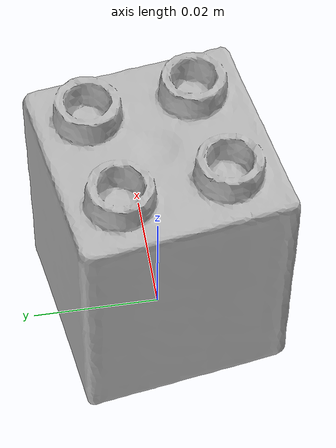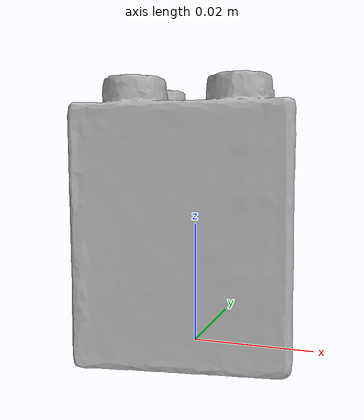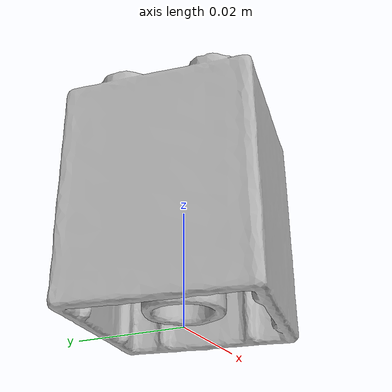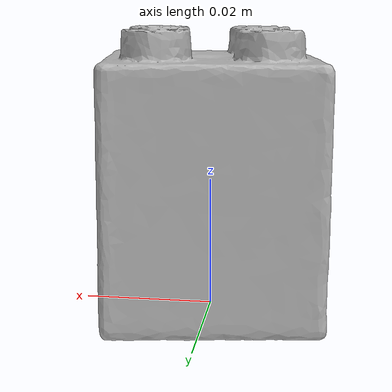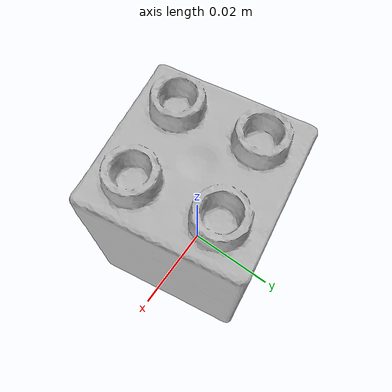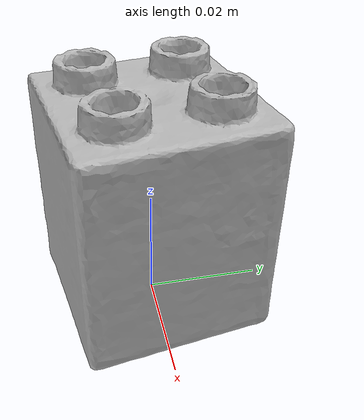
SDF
<?xml version="1.0" ?>
<sdf version='1.8'>
  <model name='ycb_073-f_lego_duplo'>
    <link name='body'>
      <inertial>
        <mass>0.0417809308719</mass>
        <pose>8.23468733e-05 0.000124909808 0.0238522059 0 0 0</pose>
        <inertia>
          <ixx>7.97892885422e-06</ixx>
          <ixy>-1.27195776216e-09</ixy>
          <ixz>4.12030156663e-08</ixz>
          <iyy>7.96782495994e-06</iyy>
          <iyz>2.24204294506e-08</iyz>
          <izz>7.6904956139e-06</izz>
        </inertia>
      </inertial>
      <visual name='ycb_073-f_lego_duplo_visual'>
        <pose>0.028386 0.066586 0.000245 0 0 0</pose>
        <geometry>
          <mesh>
            <uri>model://ycb_073-f_lego_duplo/meshes/textured.dae</uri>
          </mesh>
        </geometry>
      </visual>
      <collision name='ycb_073-f_lego_duplo_collision'>
        <pose>0.028386 0.066586 0.000245 0 0 0</pose>
        <geometry>
          <mesh>
            <uri>model://ycb_073-f_lego_duplo/meshes/nontextured.stl</uri>
          </mesh>
        </geometry>
        <max_contacts>10</max_contacts>
        <surface>
          <contact>
            <ode>
              <kp>1e15</kp>
              <kd>1e13</kd>
            </ode>
          </contact>
        </surface>
      </collision>
    </link>
  </model>
</sdf>
